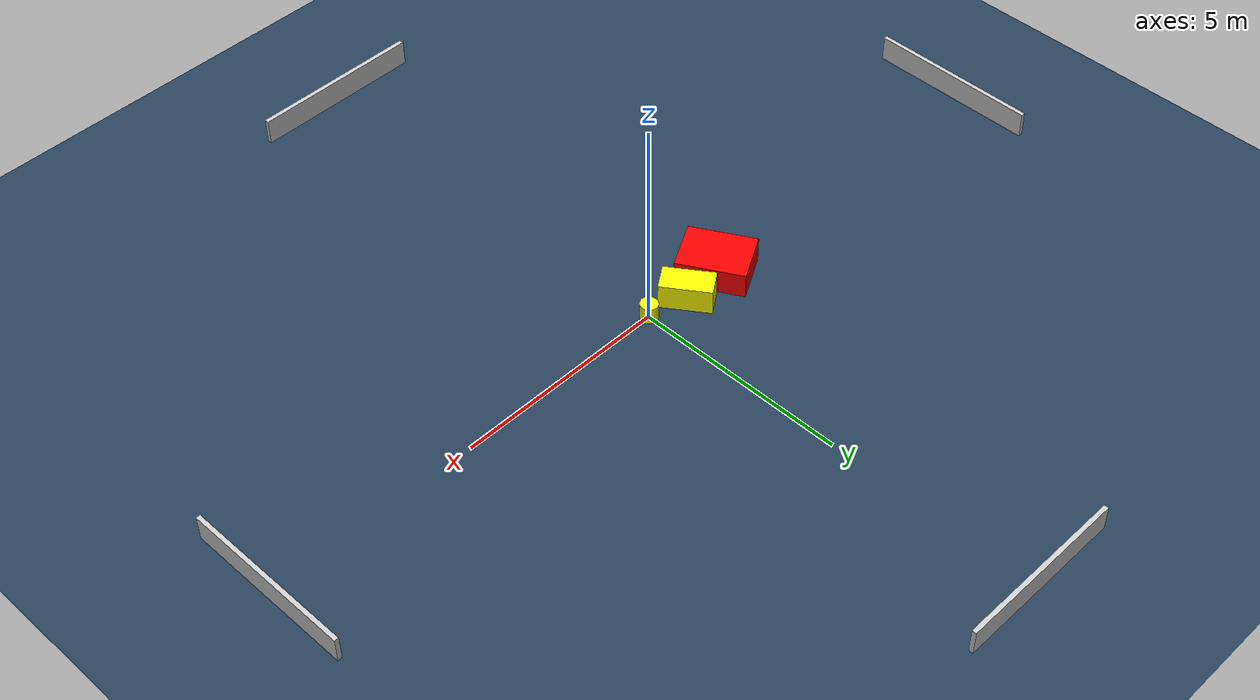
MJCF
<?xml version="1.0" ?>
<mujoco model="generated_environment">
  <option timestep="0.01" integrator="RK4" cone="elliptic"/>
  <default>
    <geom density="1"/>
  </default>
  <asset>
    <texture builtin="gradient" height="3072" name="skybox" rgb1="0.3 0.5 0.7" rgb2="0 0 0" type="skybox" width="512"/>
    <texture builtin="checker" height="300" name="groundplane" rgb1="0.2 0.3 0.4" rgb2="0.1 0.2 0.3" type="2d" width="300"/>
    <material name="groundplane" reflectance="0.2" texrepeat="5 5" texture="groundplane"/>
  </asset>
  <worldbody>
    <light dir="0 0 -1" directional="true" pos="0 0 1.5"/>
    <geom condim="3" friction="0.5 0.005 0.001" material="groundplane" name="floor" pos="0 0 0" size="0 0 0.05" type="plane"/>
    <body name="walls">
      <geom name="wall_1" condim="4" pos="-10.0 0.0 0.3" rgba="0.800000011920929 0.800000011920929 0.800000011920929 1.0" size="0.05 2.0 0.3" type="box"/>
      <geom name="wall_2" condim="4" pos="10.0 0.0 0.3" rgba="0.800000011920929 0.800000011920929 0.800000011920929 1.0" size="0.05 2.0 0.3" type="box"/>
      <geom name="wall_3" condim="4" pos="0.0 -10.0 0.3" rgba="0.800000011920929 0.800000011920929 0.800000011920929 1.0" size="2.0 0.05 0.3" type="box"/>
      <geom name="wall_4" condim="4" pos="0.0 10.0 0.3" rgba="0.800000011920929 0.800000011920929 0.800000011920929 1.0" size="2.0 0.05 0.3" type="box"/>
    </body>
    <body name="robot">
      <joint name="joint_x" type="slide" pos="0 0 0" axis="1 0 0"/>
      <joint name="joint_y" type="slide" pos="0 0 0" axis="0 1 0"/>
      <geom name="robot" type="cylinder" pos="0.0 0.0 0.2" size="0.2 0.2 0.0" mass="5.0" friction="1.0 0.005 0.0001" condim="4" rgba="1.0 1.0 0.0 1.0"/>
    </body>
    <body name="obstacle_1_movable">
      <geom name="obstacle_1_movable" condim="4" pos="-0.9146151293988196 0.22260100065454336 0.3" euler="0 0 304.83736967118716" friction="0.0 0.005 0.001" rgba="1.0 1.0 0.0 1.0" size="0.5784913223877577 0.30688040522211685 0.3" type="box" mass="0.1"/>
      <joint type="free"/>
    </body>
    <body name="obstacle_2_static">
      <geom name="obstacle_2_static" condim="4" pos="-1.9613660702700106 0.0717859474559043 0.3" euler="0 0 299.21459140188244" friction="0.0 0.005 0.001" rgba="1.0 0.0 0.0 1.0" size="0.7730654537774311 0.5858736217423925 0.3" type="box"/>
    </body>
  </worldbody>
  <actuator>
    <motor name="actuator_x" joint="joint_x" gear="1" ctrlrange="-1 1"/>
    <motor name="actuator_y" joint="joint_y" gear="1" ctrlrange="-1 1"/>
  </actuator>
</mujoco>
